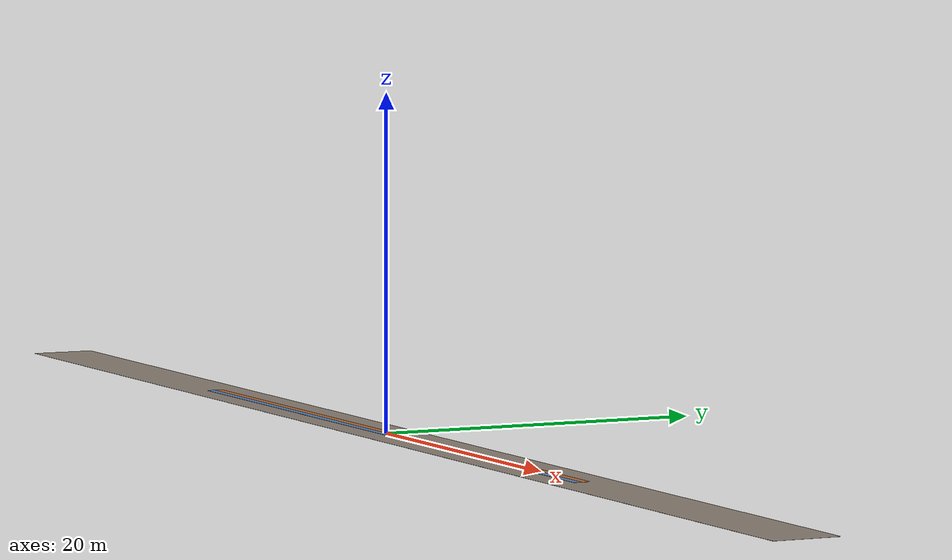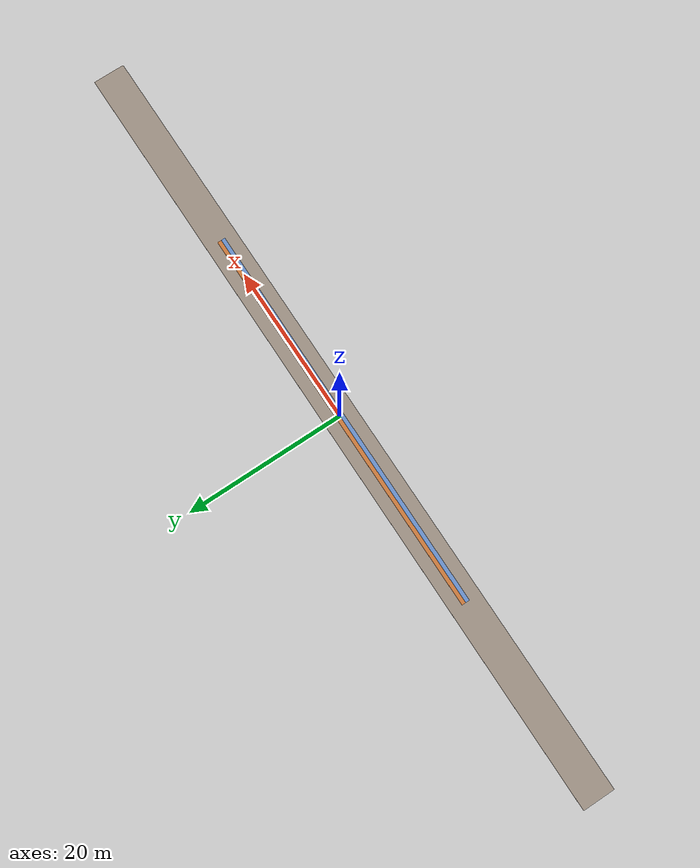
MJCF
<mujoco model="treadmill_splitbelt">

  <option timestep="0.004"/>

  <asset>
    <texture name="left_belt_tex"  type="2d" builtin="checker"
             rgb1="0.10 0.25 0.55"  rgb2="0.70 0.85 1.00"
             width="64" height="64"/>
    <texture name="right_belt_tex" type="2d" builtin="checker"
             rgb1="0.55 0.18 0.10"  rgb2="1.00 0.75 0.35"
             width="64" height="64"/>
    <material name="left_belt_mat"  texture="left_belt_tex"  texrepeat="200 4" specular="0.1" shininess="0.1"/>
    <material name="right_belt_mat" texture="right_belt_tex" texrepeat="200 4" specular="0.1" shininess="0.1"/>
  </asset>

  <default>
    <default class="treadmill_belt">
      <geom type="box" friction="1.0 0.005 0.0001"/>
      <joint type="slide" axis="1 0 0" damping="0" frictionloss="0"/>
    </default>
  </default>

  <worldbody>
    <light name="overhead"   directional="true" pos="0 0 5.0"  dir="0 0 -1"     diffuse="0.7 0.7 0.7" specular="0.2 0.2 0.2"/>
    <light name="fill_front" directional="true" pos="2 0 2.0"  dir="-1 0 -0.5"  diffuse="0.3 0.3 0.3"/>
    <light name="fill_side"  directional="true" pos="0 2 2.0"  dir="0 -1 -0.5" diffuse="0.3 0.3 0.3"/>
    <geom name="fallback_floor"
          type="box"
          size="50 2.0 0.005"
          pos="0 0 -0.010"
          rgba="0.6 0.55 0.5 1"
          friction="1.0 0.005 0.0001"/>

    <!-- Left belt: y in [-0.500, 0.000], slides along world x. -->
    <body name="left_belt" pos="0 -0.250 0">
      <joint name="left_belt_joint" class="treadmill_belt"/>
      <geom name="left_belt_geom" class="treadmill_belt" size="25 0.25 0.005" material="left_belt_mat"/>
    </body>

    <!-- Right belt: y in [0.000, 0.500]. Edges meet left belt at y=0. -->
    <body name="right_belt" pos="0 0.250 0">
      <joint name="right_belt_joint" class="treadmill_belt"/>
      <geom name="right_belt_geom" class="treadmill_belt" size="25 0.25 0.005" material="right_belt_mat"/>
    </body>
  </worldbody>

  <actuator>
    <velocity name="left_belt_vel"  joint="left_belt_joint"  kv="200" ctrlrange="-3.0 3.0" forcerange="-200 200"/>
    <velocity name="right_belt_vel" joint="right_belt_joint" kv="200" ctrlrange="-3.0 3.0" forcerange="-200 200"/>
  </actuator>
</mujoco>
